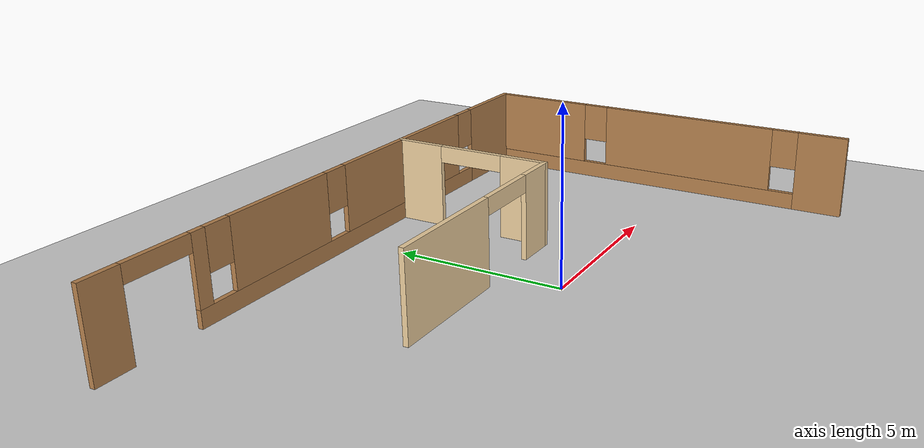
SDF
<sdf version="1.6">
 <world name="default">
  <model name="ground_plane">
   <static>1</static>
   <link name="link">
    <collision name="collision">
     <geometry><plane><normal>0 0 1</normal><size>100 100</size></plane></geometry>
     <surface><friction><ode><mu>100</mu><mu2>50</mu2></ode></friction></surface>
    </collision>
    <visual name="visual">
     <cast_shadows>0</cast_shadows>
     <geometry><plane><normal>0 0 1</normal><size>100 100</size></plane></geometry>
     <material>
      <script><uri>file://media/materials/scripts/gazebo.material</uri><name>Gazebo/Grey</name></script>
     </material>
    </visual>
   </link>
  </model>
  <model name="mybuilding">
   <link name="Wall_27">
    <pose>8.94289 0 0 0 -0 1.5708</pose>
    <visual name="Wall_27_Visual_0">
     <pose>-5.24969 0 1.25 0 -0 0</pose>
     <geometry><box><size>1.50062 0.15 2.5</size></box></geometry>
     <material>
      <script><uri>file://media/materials/scripts/gazebo.material</uri><name>Gazebo/Wood</name></script>
      <ambient>1 1 1 1</ambient>
      <shader type="pixel"/>
      <diffuse>1 1 1 1</diffuse>
      <specular>0.2 0.2 0.2 1</specular>
      <emissive>0 0 0 1</emissive>
     </material>
     <meta><layer>0</layer></meta>
    </visual>
    <visual name="Wall_27_Visual_1">
     <pose>0.750309 0 0.25 0 -0 0</pose>
     <geometry><box><size>10.4994 0.15 0.5</size></box></geometry>
     <material>
      <script><uri>file://media/materials/scripts/gazebo.material</uri><name>Gazebo/Wood</name></script>
      <ambient>1 1 1 1</ambient>
      <shader type="pixel"/>
      <diffuse>1 1 1 1</diffuse>
      <specular>0.2 0.2 0.2 1</specular>
      <emissive>0 0 0 1</emissive>
     </material>
     <meta><layer>0</layer></meta>
    </visual>
    <visual name="Wall_27_Visual_2">
     <pose>-0.87905 0 1.5 0 -0 0</pose>
     <geometry><box><size>5.64067 0.15 2</size></box></geometry>
     <material>
      <script><uri>file://media/materials/scripts/gazebo.material</uri><name>Gazebo/Wood</name></script>
      <ambient>1 1 1 1</ambient>
      <shader type="pixel"/>
      <diffuse>1 1 1 1</diffuse>
      <specular>0.2 0.2 0.2 1</specular>
      <emissive>0 0 0 1</emissive>
     </material>
     <meta><layer>0</layer></meta>
    </visual>
    <visual name="Wall_27_Visual_3">
     <pose>4.37064 0 1.5 0 -0 0</pose>
     <geometry><box><size>3.25872 0.15 2</size></box></geometry>
     <material>
      <script><uri>file://media/materials/scripts/gazebo.material</uri><name>Gazebo/Wood</name></script>
      <ambient>1 1 1 1</ambient>
      <shader type="pixel"/>
      <diffuse>1 1 1 1</diffuse>
      <specular>0.2 0.2 0.2 1</specular>
      <emissive>0 0 0 1</emissive>
     </material>
     <meta><layer>0</layer></meta>
    </visual>
    <visual name="Wall_27_Visual_4">
     <pose>-4.09938 0 1.9 0 -0 0</pose>
     <geometry><box><size>0.8 0.15 1.2</size></box></geometry>
     <material>
      <script><uri>file://media/materials/scripts/gazebo.material</uri><name>Gazebo/Wood</name></script>
      <ambient>1 1 1 1</ambient>
      <shader type="pixel"/>
      <diffuse>1 1 1 1</diffuse>
      <specular>0.2 0.2 0.2 1</specular>
      <emissive>0 0 0 1</emissive>
     </material>
     <meta><layer>0</layer></meta>
    </visual>
    <visual name="Wall_27_Visual_5">
     <pose>2.34128 0 1.9 0 -0 0</pose>
     <geometry><box><size>0.8 0.15 1.2</size></box></geometry>
     <material>
      <script><uri>file://media/materials/scripts/gazebo.material</uri><name>Gazebo/Wood</name></script>
      <ambient>1 1 1 1</ambient>
      <shader type="pixel"/>
      <diffuse>1 1 1 1</diffuse>
      <specular>0.2 0.2 0.2 1</specular>
      <emissive>0 0 0 1</emissive>
     </material>
     <meta><layer>0</layer></meta>
    </visual>
    <collision name="Wall_27_Collision_0">
     <pose>-5.24969 0 1.25 0 -0 0</pose>
     <geometry><box><size>1.50062 0.15 2.5</size></box></geometry>
     <surface>
      <friction>
       <ode><mu>1</mu><mu2>1</mu2><fdir1>0 0 0</fdir1><slip1>0</slip1><slip2>0</slip2></ode>
       <torsional>
        <coefficient>1</coefficient>
        <patch_radius>0</patch_radius>
        <surface_radius>0</surface_radius>
        <use_patch_radius>1</use_patch_radius>
        <ode><slip>0</slip></ode>
       </torsional>
      </friction>
      <bounce><restitution_coefficient>0</restitution_coefficient><threshold>1e+06</threshold></bounce>
      <contact>
       <collide_without_contact>0</collide_without_contact>
       <collide_without_contact_bitmask>1</collide_without_contact_bitmask>
       <collide_bitmask>1</collide_bitmask>
       <ode>
        <soft_cfm>0</soft_cfm>
        <soft_erp>0.2</soft_erp>
        <kp>1e+13</kp>
        <kd>1</kd>
        <max_vel>0.01</max_vel>
        <min_depth>0</min_depth>
       </ode>
       <bullet>
        <split_impulse>1</split_impulse>
        <split_impulse_penetration_threshold>-0.01</split_impulse_penetration_threshold>
        <soft_cfm>0</soft_cfm>
        <soft_erp>0.2</soft_erp>
        <kp>1e+13</kp>
        <kd>1</kd>
       </bullet>
      </contact>
     </surface>
    </collision>
    <collision name="Wall_27_Collision_1">
     <pose>0.750309 0 0.25 0 -0 0</pose>
     <geometry><box><size>10.4994 0.15 0.5</size></box></geometry>
     <surface>
      <friction>
       <ode><mu>1</mu><mu2>1</mu2><fdir1>0 0 0</fdir1><slip1>0</slip1><slip2>0</slip2></ode>
       <torsional>
        <coefficient>1</coefficient>
        <patch_radius>0</patch_radius>
        <surface_radius>0</surface_radius>
        <use_patch_radius>1</use_patch_radius>
        <ode><slip>0</slip></ode>
       </torsional>
      </friction>
      <bounce><restitution_coefficient>0</restitution_coefficient><threshold>1e+06</threshold></bounce>
      <contact>
       <collide_without_contact>0</collide_without_contact>
       <collide_without_contact_bitmask>1</collide_without_contact_bitmask>
       <collide_bitmask>1</collide_bitmask>
       <ode>
        <soft_cfm>0</soft_cfm>
        <soft_erp>0.2</soft_erp>
        <kp>1e+13</kp>
        <kd>1</kd>
        <max_vel>0.01</max_vel>
        <min_depth>0</min_depth>
       </ode>
       <bullet>
        <split_impulse>1</split_impulse>
        <split_impulse_penetration_threshold>-0.01</split_impulse_penetration_threshold>
        <soft_cfm>0</soft_cfm>
        <soft_erp>0.2</soft_erp>
        <kp>1e+13</kp>
        <kd>1</kd>
       </bullet>
      </contact>
     </surface>
    </collision>
    <collision name="Wall_27_Collision_2">
     <pose>-0.87905 0 1.5 0 -0 0</pose>
     <geometry><box><size>5.64067 0.15 2</size></box></geometry>
     <surface>
      <friction>
       <ode><mu>1</mu><mu2>1</mu2><fdir1>0 0 0</fdir1><slip1>0</slip1><slip2>0</slip2></ode>
       <torsional>
        <coefficient>1</coefficient>
        <patch_radius>0</patch_radius>
        <surface_radius>0</surface_radius>
        <use_patch_radius>1</use_patch_radius>
        <ode><slip>0</slip></ode>
       </torsional>
      </friction>
      <bounce><restitution_coefficient>0</restitution_coefficient><threshold>1e+06</threshold></bounce>
      <contact>
       <collide_without_contact>0</collide_without_contact>
       <collide_without_contact_bitmask>1</collide_without_contact_bitmask>
       <collide_bitmask>1</collide_bitmask>
       <ode>
        <soft_cfm>0</soft_cfm>
        <soft_erp>0.2</soft_erp>
        <kp>1e+13</kp>
        <kd>1</kd>
        <max_vel>0.01</max_vel>
        <min_depth>0</min_depth>
       </ode>
       <bullet>
        <split_impulse>1</split_impulse>
        <split_impulse_penetration_threshold>-0.01</split_impulse_penetration_threshold>
        <soft_cfm>0</soft_cfm>
        <soft_erp>0.2</soft_erp>
        <kp>1e+13</kp>
        <kd>1</kd>
       </bullet>
      </contact>
     </surface>
    </collision>
    <collision name="Wall_27_Collision_3">
     <pose>4.37064 0 1.5 0 -0 0</pose>
     <geometry><box><size>3.25872 0.15 2</size></box></geometry>
     <surface>
      <friction>
       <ode><mu>1</mu><mu2>1</mu2><fdir1>0 0 0</fdir1><slip1>0</slip1><slip2>0</slip2></ode>
       <torsional>
        <coefficient>1</coefficient>
        <patch_radius>0</patch_radius>
        <surface_radius>0</surface_radius>
        <use_patch_radius>1</use_patch_radius>
        <ode><slip>0</slip></ode>
       </torsional>
      </friction>
      <bounce><restitution_coefficient>0</restitution_coefficient><threshold>1e+06</threshold></bounce>
      <contact>
       <collide_without_contact>0</collide_without_contact>
       <collide_without_contact_bitmask>1</collide_without_contact_bitmask>
       <collide_bitmask>1</collide_bitmask>
       <ode>
        <soft_cfm>0</soft_cfm>
        <soft_erp>0.2</soft_erp>
        <kp>1e+13</kp>
        <kd>1</kd>
        <max_vel>0.01</max_vel>
        <min_depth>0</min_depth>
       </ode>
       <bullet>
        <split_impulse>1</split_impulse>
        <split_impulse_penetration_threshold>-0.01</split_impulse_penetration_threshold>
        <soft_cfm>0</soft_cfm>
        <soft_erp>0.2</soft_erp>
        <kp>1e+13</kp>
        <kd>1</kd>
       </bullet>
      </contact>
     </surface>
    </collision>
    <collision name="Wall_27_Collision_4">
     <pose>-4.09938 0 1.9 0 -0 0</pose>
     <geometry><box><size>0.8 0.15 1.2</size></box></geometry>
     <surface>
      <friction>
       <ode><mu>1</mu><mu2>1</mu2><fdir1>0 0 0</fdir1><slip1>0</slip1><slip2>0</slip2></ode>
       <torsional>
        <coefficient>1</coefficient>
        <patch_radius>0</patch_radius>
        <surface_radius>0</surface_radius>
        <use_patch_radius>1</use_patch_radius>
        <ode><slip>0</slip></ode>
       </torsional>
      </friction>
      <bounce><restitution_coefficient>0</restitution_coefficient><threshold>1e+06</threshold></bounce>
      <contact>
       <collide_without_contact>0</collide_without_contact>
       <collide_without_contact_bitmask>1</collide_without_contact_bitmask>
       <collide_bitmask>1</collide_bitmask>
       <ode>
        <soft_cfm>0</soft_cfm>
        <soft_erp>0.2</soft_erp>
        <kp>1e+13</kp>
        <kd>1</kd>
        <max_vel>0.01</max_vel>
        <min_depth>0</min_depth>
       </ode>
       <bullet>
        <split_impulse>1</split_impulse>
        <split_impulse_penetration_threshold>-0.01</split_impulse_penetration_threshold>
        <soft_cfm>0</soft_cfm>
        <soft_erp>0.2</soft_erp>
        <kp>1e+13</kp>
        <kd>1</kd>
       </bullet>
      </contact>
     </surface>
    </collision>
    <collision name="Wall_27_Collision_5">
     <pose>2.34128 0 1.9 0 -0 0</pose>
     <geometry><box><size>0.8 0.15 1.2</size></box></geometry>
     <surface>
      <friction>
       <ode><mu>1</mu><mu2>1</mu2><fdir1>0 0 0</fdir1><slip1>0</slip1><slip2>0</slip2></ode>
       <torsional>
        <coefficient>1</coefficient>
        <patch_radius>0</patch_radius>
        <surface_radius>0</surface_radius>
        <use_patch_radius>1</use_patch_radius>
        <ode><slip>0</slip></ode>
       </torsional>
      </friction>
      <bounce><restitution_coefficient>0</restitution_coefficient><threshold>1e+06</threshold></bounce>
      <contact>
       <collide_without_contact>0</collide_without_contact>
       <collide_without_contact_bitmask>1</collide_without_contact_bitmask>
       <collide_bitmask>1</collide_bitmask>
       <ode>
        <soft_cfm>0</soft_cfm>
        <soft_erp>0.2</soft_erp>
        <kp>1e+13</kp>
        <kd>1</kd>
        <max_vel>0.01</max_vel>
        <min_depth>0</min_depth>
       </ode>
       <bullet>
        <split_impulse>1</split_impulse>
        <split_impulse_penetration_threshold>-0.01</split_impulse_penetration_threshold>
        <soft_cfm>0</soft_cfm>
        <soft_erp>0.2</soft_erp>
        <kp>1e+13</kp>
        <kd>1</kd>
       </bullet>
      </contact>
     </surface>
    </collision>
   </link>
   <link name="Wall_28">
    <pose>0.01789 5.925 0 0 -0 3.14159</pose>
    <visual name="Wall_28_Visual_0">
     <pose>-7.74223 0 1.25 0 -0 0</pose>
     <geometry><box><size>2.51553 0.15 2.5</size></box></geometry>
     <material>
      <script><uri>file://media/materials/scripts/gazebo.material</uri><name>Gazebo/Wood</name></script>
      <ambient>1 1 1 1</ambient>
      <shader type="pixel"/>
      <diffuse>1 1 1 1</diffuse>
      <specular>0.2 0.2 0.2 1</specular>
      <emissive>0 0 0 1</emissive>
     </material>
     <meta><layer>0</layer></meta>
    </visual>
    <visual name="Wall_28_Visual_1">
     <pose>8.4451 0 1.25 0 -0 0</pose>
     <geometry><box><size>1.1098 0.15 2.5</size></box></geometry>
     <material>
      <script><uri>file://media/materials/scripts/gazebo.material</uri><name>Gazebo/Wood</name></script>
      <ambient>1 1 1 1</ambient>
      <shader type="pixel"/>
      <diffuse>1 1 1 1</diffuse>
      <specular>0.2 0.2 0.2 1</specular>
      <emissive>0 0 0 1</emissive>
     </material>
     <meta><layer>0</layer></meta>
    </visual>
    <visual name="Wall_28_Visual_2">
     <pose>-0.297132 0 0.25 0 -0 0</pose>
     <geometry><box><size>12.3747 0.15 0.5</size></box></geometry>
     <material>
      <script><uri>file://media/materials/scripts/gazebo.material</uri><name>Gazebo/Wood</name></script>
      <ambient>1 1 1 1</ambient>
      <shader type="pixel"/>
      <diffuse>1 1 1 1</diffuse>
      <specular>0.2 0.2 0.2 1</specular>
      <emissive>0 0 0 1</emissive>
     </material>
     <meta><layer>0</layer></meta>
    </visual>
    <visual name="Wall_28_Visual_3">
     <pose>-2.73968 0 1.5 0 -0 0</pose>
     <geometry><box><size>5.88958 0.15 2</size></box></geometry>
     <material>
      <script><uri>file://media/materials/scripts/gazebo.material</uri><name>Gazebo/Wood</name></script>
      <ambient>1 1 1 1</ambient>
      <shader type="pixel"/>
      <diffuse>1 1 1 1</diffuse>
      <specular>0.2 0.2 0.2 1</specular>
      <emissive>0 0 0 1</emissive>
     </material>
     <meta><layer>0</layer></meta>
    </visual>
    <visual name="Wall_28_Visual_4">
     <pose>2.82979 0 1.5 0 -0 0</pose>
     <geometry><box><size>3.64935 0.15 2</size></box></geometry>
     <material>
      <script><uri>file://media/materials/scripts/gazebo.material</uri><name>Gazebo/Wood</name></script>
      <ambient>1 1 1 1</ambient>
      <shader type="pixel"/>
      <diffuse>1 1 1 1</diffuse>
      <specular>0.2 0.2 0.2 1</specular>
      <emissive>0 0 0 1</emissive>
     </material>
     <meta><layer>0</layer></meta>
    </visual>
    <visual name="Wall_28_Visual_5">
     <pose>5.67233 0 1.5 0 -0 0</pose>
     <geometry><box><size>0.435745 0.15 2</size></box></geometry>
     <material>
      <script><uri>file://media/materials/scripts/gazebo.material</uri><name>Gazebo/Wood</name></script>
      <ambient>1 1 1 1</ambient>
      <shader type="pixel"/>
      <diffuse>1 1 1 1</diffuse>
      <specular>0.2 0.2 0.2 1</specular>
      <emissive>0 0 0 1</emissive>
     </material>
     <meta><layer>0</layer></meta>
    </visual>
    <visual name="Wall_28_Visual_6">
     <pose>-6.08447 0 1.9 0 -0 0</pose>
     <geometry><box><size>0.8 0.15 1.2</size></box></geometry>
     <material>
      <script><uri>file://media/materials/scripts/gazebo.material</uri><name>Gazebo/Wood</name></script>
      <ambient>1 1 1 1</ambient>
      <shader type="pixel"/>
      <diffuse>1 1 1 1</diffuse>
      <specular>0.2 0.2 0.2 1</specular>
      <emissive>0 0 0 1</emissive>
     </material>
     <meta><layer>0</layer></meta>
    </visual>
    <visual name="Wall_28_Visual_7">
     <pose>0.605112 0 1.9 0 -0 0</pose>
     <geometry><box><size>0.8 0.15 1.2</size></box></geometry>
     <material>
      <script><uri>file://media/materials/scripts/gazebo.material</uri><name>Gazebo/Wood</name></script>
      <ambient>1 1 1 1</ambient>
      <shader type="pixel"/>
      <diffuse>1 1 1 1</diffuse>
      <specular>0.2 0.2 0.2 1</specular>
      <emissive>0 0 0 1</emissive>
     </material>
     <meta><layer>0</layer></meta>
    </visual>
    <visual name="Wall_28_Visual_8">
     <pose>5.05446 0 1.9 0 -0 0</pose>
     <geometry><box><size>0.8 0.15 1.2</size></box></geometry>
     <material>
      <script><uri>file://media/materials/scripts/gazebo.material</uri><name>Gazebo/Wood</name></script>
      <ambient>1 1 1 1</ambient>
      <shader type="pixel"/>
      <diffuse>1 1 1 1</diffuse>
      <specular>0.2 0.2 0.2 1</specular>
      <emissive>0 0 0 1</emissive>
     </material>
     <meta><layer>0</layer></meta>
    </visual>
    <visual name="Wall_28_Visual_9">
     <pose>6.8902 0 2.25 0 -0 0</pose>
     <geometry><box><size>2 0.15 0.5</size></box></geometry>
     <material>
      <script><uri>file://media/materials/scripts/gazebo.material</uri><name>Gazebo/Wood</name></script>
      <ambient>1 1 1 1</ambient>
      <shader type="pixel"/>
      <diffuse>1 1 1 1</diffuse>
      <specular>0.2 0.2 0.2 1</specular>
      <emissive>0 0 0 1</emissive>
     </material>
     <meta><layer>0</layer></meta>
    </visual>
    <collision name="Wall_28_Collision_0">
     <pose>-7.74223 0 1.25 0 -0 0</pose>
     <geometry><box><size>2.51553 0.15 2.5</size></box></geometry>
     <surface>
      <friction>
       <ode><mu>1</mu><mu2>1</mu2><fdir1>0 0 0</fdir1><slip1>0</slip1><slip2>0</slip2></ode>
       <torsional>
        <coefficient>1</coefficient>
        <patch_radius>0</patch_radius>
        <surface_radius>0</surface_radius>
        <use_patch_radius>1</use_patch_radius>
        <ode><slip>0</slip></ode>
       </torsional>
      </friction>
      <bounce><restitution_coefficient>0</restitution_coefficient><threshold>1e+06</threshold></bounce>
      <contact>
       <collide_without_contact>0</collide_without_contact>
       <collide_without_contact_bitmask>1</collide_without_contact_bitmask>
       <collide_bitmask>1</collide_bitmask>
       <ode>
        <soft_cfm>0</soft_cfm>
        <soft_erp>0.2</soft_erp>
        <kp>1e+13</kp>
        <kd>1</kd>
        <max_vel>0.01</max_vel>
        <min_depth>0</min_depth>
       </ode>
       <bullet>
        <split_impulse>1</split_impulse>
        <split_impulse_penetration_threshold>-0.01</split_impulse_penetration_threshold>
        <soft_cfm>0</soft_cfm>
        <soft_erp>0.2</soft_erp>
        <kp>1e+13</kp>
        <kd>1</kd>
       </bullet>
      </contact>
     </surface>
    </collision>
    <collision name="Wall_28_Collision_1">
     <pose>8.4451 0 1.25 0 -0 0</pose>
     <geometry><box><size>1.1098 0.15 2.5</size></box></geometry>
     <surface>
      <friction>
       <ode><mu>1</mu><mu2>1</mu2><fdir1>0 0 0</fdir1><slip1>0</slip1><slip2>0</slip2></ode>
       <torsional>
        <coefficient>1</coefficient>
        <patch_radius>0</patch_radius>
        <surface_radius>0</surface_radius>
        <use_patch_radius>1</use_patch_radius>
        <ode><slip>0</slip></ode>
       </torsional>
      </friction>
      <bounce><restitution_coefficient>0</restitution_coefficient><threshold>1e+06</threshold></bounce>
      <contact>
       <collide_without_contact>0</collide_without_contact>
       <collide_without_contact_bitmask>1</collide_without_contact_bitmask>
       <collide_bitmask>1</collide_bitmask>
       <ode>
        <soft_cfm>0</soft_cfm>
        <soft_erp>0.2</soft_erp>
        <kp>1e+13</kp>
        <kd>1</kd>
        <max_vel>0.01</max_vel>
        <min_depth>0</min_depth>
       </ode>
       <bullet>
        <split_impulse>1</split_impulse>
        <split_impulse_penetration_threshold>-0.01</split_impulse_penetration_threshold>
        <soft_cfm>0</soft_cfm>
        <soft_erp>0.2</soft_erp>
        <kp>1e+13</kp>
        <kd>1</kd>
       </bullet>
      </contact>
     </surface>
    </collision>
    <collision name="Wall_28_Collision_2">
     <pose>-0.297132 0 0.25 0 -0 0</pose>
     <geometry><box><size>12.3747 0.15 0.5</size></box></geometry>
     <surface>
      <friction>
       <ode><mu>1</mu><mu2>1</mu2><fdir1>0 0 0</fdir1><slip1>0</slip1><slip2>0</slip2></ode>
       <torsional>
        <coefficient>1</coefficient>
        <patch_radius>0</patch_radius>
        <surface_radius>0</surface_radius>
        <use_patch_radius>1</use_patch_radius>
        <ode><slip>0</slip></ode>
       </torsional>
      </friction>
      <bounce><restitution_coefficient>0</restitution_coefficient><threshold>1e+06</threshold></bounce>
      <contact>
       <collide_without_contact>0</collide_without_contact>
       <collide_without_contact_bitmask>1</collide_without_contact_bitmask>
       <collide_bitmask>1</collide_bitmask>
       <ode>
        <soft_cfm>0</soft_cfm>
        <soft_erp>0.2</soft_erp>
        <kp>1e+13</kp>
        <kd>1</kd>
        <max_vel>0.01</max_vel>
        <min_depth>0</min_depth>
       </ode>
       <bullet>
        <split_impulse>1</split_impulse>
        <split_impulse_penetration_threshold>-0.01</split_impulse_penetration_threshold>
        <soft_cfm>0</soft_cfm>
        <soft_erp>0.2</soft_erp>
        <kp>1e+13</kp>
        <kd>1</kd>
       </bullet>
      </contact>
     </surface>
    </collision>
    <collision name="Wall_28_Collision_4">
     <pose>2.82979 0 1.5 0 -0 0</pose>
     <geometry><box><size>3.64935 0.15 2</size></box></geometry>
     <surface>
      <friction>
       <ode><mu>1</mu><mu2>1</mu2><fdir1>0 0 0</fdir1><slip1>0</slip1><slip2>0</slip2></ode>
       <torsional>
        <coefficient>1</coefficient>
        <patch_radius>0</patch_radius>
        <surface_radius>0</surface_radius>
        <use_patch_radius>1</use_patch_radius>
        <ode><slip>0</slip></ode>
       </torsional>
      </friction>
      <bounce><restitution_coefficient>0</restitution_coefficient><threshold>1e+06</threshold></bounce>
      <contact>
       <collide_without_contact>0</collide_without_contact>
       <collide_without_contact_bitmask>1</collide_without_contact_bitmask>
       <collide_bitmask>1</collide_bitmask>
       <ode>
        <soft_cfm>0</soft_cfm>
        <soft_erp>0.2</soft_erp>
        <kp>1e+13</kp>
        <kd>1</kd>
        <max_vel>0.01</max_vel>
        <min_depth>0</min_depth>
       </ode>
       <bullet>
        <split_impulse>1</split_impulse>
        <split_impulse_penetration_threshold>-0.01</split_impulse_penetration_threshold>
        <soft_cfm>0</soft_cfm>
        <soft_erp>0.2</soft_erp>
        <kp>1e+13</kp>
        <kd>1</kd>
       </bullet>
      </contact>
     </surface>
    </collision>
    <collision name="Wall_28_Collision_3">
     <pose>-2.73968 0 1.5 0 -0 0</pose>
     <geometry><box><size>5.88958 0.15 2</size></box></geometry>
     <surface>
      <friction>
       <ode><mu>1</mu><mu2>1</mu2><fdir1>0 0 0</fdir1><slip1>0</slip1><slip2>0</slip2></ode>
       <torsional>
        <coefficient>1</coefficient>
        <patch_radius>0</patch_radius>
        <surface_radius>0</surface_radius>
        <use_patch_radius>1</use_patch_radius>
        <ode><slip>0</slip></ode>
       </torsional>
      </friction>
      <bounce><restitution_coefficient>0</restitution_coefficient><threshold>1e+06</threshold></bounce>
      <contact>
       <collide_without_contact>0</collide_without_contact>
       <collide_without_contact_bitmask>1</collide_without_contact_bitmask>
       <collide_bitmask>1</collide_bitmask>
       <ode>
        <soft_cfm>0</soft_cfm>
        <soft_erp>0.2</soft_erp>
        <kp>1e+13</kp>
        <kd>1</kd>
        <max_vel>0.01</max_vel>
        <min_depth>0</min_depth>
       </ode>
       <bullet>
        <split_impulse>1</split_impulse>
        <split_impulse_penetration_threshold>-0.01</split_impulse_penetration_threshold>
        <soft_cfm>0</soft_cfm>
        <soft_erp>0.2</soft_erp>
        <kp>1e+13</kp>
        <kd>1</kd>
       </bullet>
      </contact>
     </surface>
    </collision>
    <collision name="Wall_28_Collision_5">
     <pose>5.67233 0 1.5 0 -0 0</pose>
     <geometry><box><size>0.435745 0.15 2</size></box></geometry>
     <surface>
      <friction>
       <ode><mu>1</mu><mu2>1</mu2><fdir1>0 0 0</fdir1><slip1>0</slip1><slip2>0</slip2></ode>
       <torsional>
        <coefficient>1</coefficient>
        <patch_radius>0</patch_radius>
        <surface_radius>0</surface_radius>
        <use_patch_radius>1</use_patch_radius>
        <ode><slip>0</slip></ode>
       </torsional>
      </friction>
      <bounce><restitution_coefficient>0</restitution_coefficient><threshold>1e+06</threshold></bounce>
      <contact>
       <collide_without_contact>0</collide_without_contact>
       <collide_without_contact_bitmask>1</collide_without_contact_bitmask>
       <collide_bitmask>1</collide_bitmask>
       <ode>
        <soft_cfm>0</soft_cfm>
        <soft_erp>0.2</soft_erp>
        <kp>1e+13</kp>
        <kd>1</kd>
        <max_vel>0.01</max_vel>
        <min_depth>0</min_depth>
       </ode>
       <bullet>
        <split_impulse>1</split_impulse>
        <split_impulse_penetration_threshold>-0.01</split_impulse_penetration_threshold>
        <soft_cfm>0</soft_cfm>
        <soft_erp>0.2</soft_erp>
        <kp>1e+13</kp>
        <kd>1</kd>
       </bullet>
      </contact>
     </surface>
    </collision>
    <collision name="Wall_28_Collision_6">
     <pose>-6.08447 0 1.9 0 -0 0</pose>
     <geometry><box><size>0.8 0.15 1.2</size></box></geometry>
     <surface>
      <friction>
       <ode><mu>1</mu><mu2>1</mu2><fdir1>0 0 0</fdir1><slip1>0</slip1><slip2>0</slip2></ode>
       <torsional>
        <coefficient>1</coefficient>
        <patch_radius>0</patch_radius>
        <surface_radius>0</surface_radius>
        <use_patch_radius>1</use_patch_radius>
        <ode><slip>0</slip></ode>
       </torsional>
      </friction>
      <bounce><restitution_coefficient>0</restitution_coefficient><threshold>1e+06</threshold></bounce>
      <contact>
       <collide_without_contact>0</collide_without_contact>
       <collide_without_contact_bitmask>1</collide_without_contact_bitmask>
       <collide_bitmask>1</collide_bitmask>
       <ode>
        <soft_cfm>0</soft_cfm>
        <soft_erp>0.2</soft_erp>
        <kp>1e+13</kp>
        <kd>1</kd>
        <max_vel>0.01</max_vel>
        <min_depth>0</min_depth>
       </ode>
       <bullet>
        <split_impulse>1</split_impulse>
        <split_impulse_penetration_threshold>-0.01</split_impulse_penetration_threshold>
        <soft_cfm>0</soft_cfm>
        <soft_erp>0.2</soft_erp>
        <kp>1e+13</kp>
        <kd>1</kd>
       </bullet>
      </contact>
     </surface>
    </collision>
    <collision name="Wall_28_Collision_7">
     <pose>0.605112 0 1.9 0 -0 0</pose>
     <geometry><box><size>0.8 0.15 1.2</size></box></geometry>
     <surface>
      <friction>
       <ode><mu>1</mu><mu2>1</mu2><fdir1>0 0 0</fdir1><slip1>0</slip1><slip2>0</slip2></ode>
       <torsional>
        <coefficient>1</coefficient>
        <patch_radius>0</patch_radius>
        <surface_radius>0</surface_radius>
        <use_patch_radius>1</use_patch_radius>
        <ode><slip>0</slip></ode>
       </torsional>
      </friction>
      <bounce><restitution_coefficient>0</restitution_coefficient><threshold>1e+06</threshold></bounce>
      <contact>
       <collide_without_contact>0</collide_without_contact>
       <collide_without_contact_bitmask>1</collide_without_contact_bitmask>
       <collide_bitmask>1</collide_bitmask>
       <ode>
        <soft_cfm>0</soft_cfm>
        <soft_erp>0.2</soft_erp>
        <kp>1e+13</kp>
        <kd>1</kd>
        <max_vel>0.01</max_vel>
        <min_depth>0</min_depth>
       </ode>
       <bullet>
        <split_impulse>1</split_impulse>
        <split_impulse_penetration_threshold>-0.01</split_impulse_penetration_threshold>
        <soft_cfm>0</soft_cfm>
        <soft_erp>0.2</soft_erp>
        <kp>1e+13</kp>
        <kd>1</kd>
       </bullet>
      </contact>
     </surface>
    </collision>
    <collision name="Wall_28_Collision_8">
     <pose>5.05446 0 1.9 0 -0 0</pose>
     <geometry><box><size>0.8 0.15 1.2</size></box></geometry>
     <surface>
      <friction>
       <ode><mu>1</mu><mu2>1</mu2><fdir1>0 0 0</fdir1><slip1>0</slip1><slip2>0</slip2></ode>
       <torsional>
        <coefficient>1</coefficient>
        <patch_radius>0</patch_radius>
        <surface_radius>0</surface_radius>
        <use_patch_radius>1</use_patch_radius>
        <ode><slip>0</slip></ode>
       </torsional>
      </friction>
      <bounce><restitution_coefficient>0</restitution_coefficient><threshold>1e+06</threshold></bounce>
      <contact>
       <collide_without_contact>0</collide_without_contact>
       <collide_without_contact_bitmask>1</collide_without_contact_bitmask>
       <collide_bitmask>1</collide_bitmask>
       <ode>
        <soft_cfm>0</soft_cfm>
        <soft_erp>0.2</soft_erp>
        <kp>1e+13</kp>
        <kd>1</kd>
        <max_vel>0.01</max_vel>
        <min_depth>0</min_depth>
       </ode>
       <bullet>
        <split_impulse>1</split_impulse>
        <split_impulse_penetration_threshold>-0.01</split_impulse_penetration_threshold>
        <soft_cfm>0</soft_cfm>
        <soft_erp>0.2</soft_erp>
        <kp>1e+13</kp>
        <kd>1</kd>
       </bullet>
      </contact>
     </surface>
    </collision>
    <collision name="Wall_28_Collision_9">
     <pose>6.8902 0 2.25 0 -0 0</pose>
     <geometry><box><size>2 0.15 0.5</size></box></geometry>
     <surface>
      <friction>
       <ode><mu>1</mu><mu2>1</mu2><fdir1>0 0 0</fdir1><slip1>0</slip1><slip2>0</slip2></ode>
       <torsional>
        <coefficient>1</coefficient>
        <patch_radius>0</patch_radius>
        <surface_radius>0</surface_radius>
        <use_patch_radius>1</use_patch_radius>
        <ode><slip>0</slip></ode>
       </torsional>
      </friction>
      <bounce><restitution_coefficient>0</restitution_coefficient><threshold>1e+06</threshold></bounce>
      <contact>
       <collide_without_contact>0</collide_without_contact>
       <collide_without_contact_bitmask>1</collide_without_contact_bitmask>
       <collide_bitmask>1</collide_bitmask>
       <ode>
        <soft_cfm>0</soft_cfm>
        <soft_erp>0.2</soft_erp>
        <kp>1e+13</kp>
        <kd>1</kd>
        <max_vel>0.01</max_vel>
        <min_depth>0</min_depth>
       </ode>
       <bullet>
        <split_impulse>1</split_impulse>
        <split_impulse_penetration_threshold>-0.01</split_impulse_penetration_threshold>
        <soft_cfm>0</soft_cfm>
        <soft_erp>0.2</soft_erp>
        <kp>1e+13</kp>
        <kd>1</kd>
       </bullet>
      </contact>
     </surface>
    </collision>
   </link>
   <link name="Wall_36">
    <pose>-0.802597 1.06943 0 0 -0 0</pose>
    <visual name="Wall_36_Visual_0">
     <pose>-1.64448 0 1.25 0 -0 0</pose>
     <geometry><box><size>3.71103 0.15 2.5</size></box></geometry>
     <material>
      <script><uri>file://media/materials/scripts/gazebo.material</uri><name>Gazebo/Grey</name></script>
      <ambient>0.921569 0.807843 0.615686 1</ambient>
      <shader type="pixel"/>
      <diffuse>0.7 0.7 0.7 1</diffuse>
      <specular>0.01 0.01 0.01 1</specular>
      <emissive>0 0 0 1</emissive>
     </material>
     <meta><layer>0</layer></meta>
    </visual>
    <visual name="Wall_36_Visual_1">
     <pose>2.85552 0 1.25 0 -0 0</pose>
     <geometry><box><size>1.28897 0.15 2.5</size></box></geometry>
     <material>
      <script><uri>file://media/materials/scripts/gazebo.material</uri><name>Gazebo/Grey</name></script>
      <ambient>0.921569 0.807843 0.615686 1</ambient>
      <shader type="pixel"/>
      <diffuse>0.7 0.7 0.7 1</diffuse>
      <specular>0.01 0.01 0.01 1</specular>
      <emissive>0 0 0 1</emissive>
     </material>
     <meta><layer>0</layer></meta>
    </visual>
    <visual name="Wall_36_Visual_2">
     <pose>1.21103 0 2.25 0 -0 0</pose>
     <geometry><box><size>2 0.15 0.5</size></box></geometry>
     <material>
      <script><uri>file://media/materials/scripts/gazebo.material</uri><name>Gazebo/Grey</name></script>
      <ambient>0.921569 0.807843 0.615686 1</ambient>
      <shader type="pixel"/>
      <diffuse>0.7 0.7 0.7 1</diffuse>
      <specular>0.01 0.01 0.01 1</specular>
      <emissive>0 0 0 1</emissive>
     </material>
     <meta><layer>0</layer></meta>
    </visual>
    <collision name="Wall_36_Collision_0">
     <pose>-1.64448 0 1.25 0 -0 0</pose>
     <geometry><box><size>3.71103 0.15 2.5</size></box></geometry>
     <surface>
      <friction>
       <ode><mu>1</mu><mu2>1</mu2><fdir1>0 0 0</fdir1><slip1>0</slip1><slip2>0</slip2></ode>
       <torsional>
        <coefficient>1</coefficient>
        <patch_radius>0</patch_radius>
        <surface_radius>0</surface_radius>
        <use_patch_radius>1</use_patch_radius>
        <ode><slip>0</slip></ode>
       </torsional>
      </friction>
      <bounce><restitution_coefficient>0</restitution_coefficient><threshold>1e+06</threshold></bounce>
      <contact>
       <collide_without_contact>0</collide_without_contact>
       <collide_without_contact_bitmask>1</collide_without_contact_bitmask>
       <collide_bitmask>1</collide_bitmask>
       <ode>
        <soft_cfm>0</soft_cfm>
        <soft_erp>0.2</soft_erp>
        <kp>1e+13</kp>
        <kd>1</kd>
        <max_vel>0.01</max_vel>
        <min_depth>0</min_depth>
       </ode>
       <bullet>
        <split_impulse>1</split_impulse>
        <split_impulse_penetration_threshold>-0.01</split_impulse_penetration_threshold>
        <soft_cfm>0</soft_cfm>
        <soft_erp>0.2</soft_erp>
        <kp>1e+13</kp>
        <kd>1</kd>
       </bullet>
      </contact>
     </surface>
    </collision>
    <collision name="Wall_36_Collision_1">
     <pose>2.85552 0 1.25 0 -0 0</pose>
     <geometry><box><size>1.28897 0.15 2.5</size></box></geometry>
     <surface>
      <friction>
       <ode><mu>1</mu><mu2>1</mu2><fdir1>0 0 0</fdir1><slip1>0</slip1><slip2>0</slip2></ode>
       <torsional>
        <coefficient>1</coefficient>
        <patch_radius>0</patch_radius>
        <surface_radius>0</surface_radius>
        <use_patch_radius>1</use_patch_radius>
        <ode><slip>0</slip></ode>
       </torsional>
      </friction>
      <bounce><restitution_coefficient>0</restitution_coefficient><threshold>1e+06</threshold></bounce>
      <contact>
       <collide_without_contact>0</collide_without_contact>
       <collide_without_contact_bitmask>1</collide_without_contact_bitmask>
       <collide_bitmask>1</collide_bitmask>
       <ode>
        <soft_cfm>0</soft_cfm>
        <soft_erp>0.2</soft_erp>
        <kp>1e+13</kp>
        <kd>1</kd>
        <max_vel>0.01</max_vel>
        <min_depth>0</min_depth>
       </ode>
       <bullet>
        <split_impulse>1</split_impulse>
        <split_impulse_penetration_threshold>-0.01</split_impulse_penetration_threshold>
        <soft_cfm>0</soft_cfm>
        <soft_erp>0.2</soft_erp>
        <kp>1e+13</kp>
        <kd>1</kd>
       </bullet>
      </contact>
     </surface>
    </collision>
    <collision name="Wall_36_Collision_2">
     <pose>1.21103 0 2.25 0 -0 0</pose>
     <geometry><box><size>2 0.15 0.5</size></box></geometry>
     <surface>
      <friction>
       <ode><mu>1</mu><mu2>1</mu2><fdir1>0 0 0</fdir1><slip1>0</slip1><slip2>0</slip2></ode>
       <torsional>
        <coefficient>1</coefficient>
        <patch_radius>0</patch_radius>
        <surface_radius>0</surface_radius>
        <use_patch_radius>1</use_patch_radius>
        <ode><slip>0</slip></ode>
       </torsional>
      </friction>
      <bounce><restitution_coefficient>0</restitution_coefficient><threshold>1e+06</threshold></bounce>
      <contact>
       <collide_without_contact>0</collide_without_contact>
       <collide_without_contact_bitmask>1</collide_without_contact_bitmask>
       <collide_bitmask>1</collide_bitmask>
       <ode>
        <soft_cfm>0</soft_cfm>
        <soft_erp>0.2</soft_erp>
        <kp>1e+13</kp>
        <kd>1</kd>
        <max_vel>0.01</max_vel>
        <min_depth>0</min_depth>
       </ode>
       <bullet>
        <split_impulse>1</split_impulse>
        <split_impulse_penetration_threshold>-0.01</split_impulse_penetration_threshold>
        <soft_cfm>0</soft_cfm>
        <soft_erp>0.2</soft_erp>
        <kp>1e+13</kp>
        <kd>1</kd>
       </bullet>
      </contact>
     </surface>
    </collision>
   </link>
   <link name="Wall_37">
    <pose>2.6224 3.49443 0 0 -0 1.5708</pose>
    <visual name="Wall_37_Visual_0">
     <pose>-1.76652 0 1.25 0 -0 0</pose>
     <geometry><box><size>1.46697 0.15 2.5</size></box></geometry>
     <material>
      <script><uri>file://media/materials/scripts/gazebo.material</uri><name>Gazebo/Grey</name></script>
      <ambient>0.921569 0.807843 0.615686 1</ambient>
      <shader type="pixel"/>
      <diffuse>0.7 0.7 0.7 1</diffuse>
      <specular>0.01 0.01 0.01 1</specular>
      <emissive>0 0 0 1</emissive>
     </material>
     <meta><layer>0</layer></meta>
    </visual>
    <visual name="Wall_37_Visual_1">
     <pose>1.73348 0 1.25 0 -0 0</pose>
     <geometry><box><size>1.53303 0.15 2.5</size></box></geometry>
     <material>
      <script><uri>file://media/materials/scripts/gazebo.material</uri><name>Gazebo/Grey</name></script>
      <ambient>0.921569 0.807843 0.615686 1</ambient>
      <shader type="pixel"/>
      <diffuse>0.7 0.7 0.7 1</diffuse>
      <specular>0.01 0.01 0.01 1</specular>
      <emissive>0 0 0 1</emissive>
     </material>
     <meta><layer>0</layer></meta>
    </visual>
    <visual name="Wall_37_Visual_2">
     <pose>-0.033031 0 2.25 0 -0 0</pose>
     <geometry><box><size>2 0.15 0.5</size></box></geometry>
     <material>
      <script><uri>file://media/materials/scripts/gazebo.material</uri><name>Gazebo/Grey</name></script>
      <ambient>0.921569 0.807843 0.615686 1</ambient>
      <shader type="pixel"/>
      <diffuse>0.7 0.7 0.7 1</diffuse>
      <specular>0.01 0.01 0.01 1</specular>
      <emissive>0 0 0 1</emissive>
     </material>
     <meta><layer>0</layer></meta>
    </visual>
    <collision name="Wall_37_Collision_0">
     <pose>-1.76652 0 1.25 0 -0 0</pose>
     <geometry><box><size>1.46697 0.15 2.5</size></box></geometry>
     <surface>
      <friction>
       <ode><mu>1</mu><mu2>1</mu2><fdir1>0 0 0</fdir1><slip1>0</slip1><slip2>0</slip2></ode>
       <torsional>
        <coefficient>1</coefficient>
        <patch_radius>0</patch_radius>
        <surface_radius>0</surface_radius>
        <use_patch_radius>1</use_patch_radius>
        <ode><slip>0</slip></ode>
       </torsional>
      </friction>
      <bounce><restitution_coefficient>0</restitution_coefficient><threshold>1e+06</threshold></bounce>
      <contact>
       <collide_without_contact>0</collide_without_contact>
       <collide_without_contact_bitmask>1</collide_without_contact_bitmask>
       <collide_bitmask>1</collide_bitmask>
       <ode>
        <soft_cfm>0</soft_cfm>
        <soft_erp>0.2</soft_erp>
        <kp>1e+13</kp>
        <kd>1</kd>
        <max_vel>0.01</max_vel>
        <min_depth>0</min_depth>
       </ode>
       <bullet>
        <split_impulse>1</split_impulse>
        <split_impulse_penetration_threshold>-0.01</split_impulse_penetration_threshold>
        <soft_cfm>0</soft_cfm>
        <soft_erp>0.2</soft_erp>
        <kp>1e+13</kp>
        <kd>1</kd>
       </bullet>
      </contact>
     </surface>
    </collision>
    <collision name="Wall_37_Collision_1">
     <pose>1.73348 0 1.25 0 -0 0</pose>
     <geometry><box><size>1.53303 0.15 2.5</size></box></geometry>
     <surface>
      <friction>
       <ode><mu>1</mu><mu2>1</mu2><fdir1>0 0 0</fdir1><slip1>0</slip1><slip2>0</slip2></ode>
       <torsional>
        <coefficient>1</coefficient>
        <patch_radius>0</patch_radius>
        <surface_radius>0</surface_radius>
        <use_patch_radius>1</use_patch_radius>
        <ode><slip>0</slip></ode>
       </torsional>
      </friction>
      <bounce><restitution_coefficient>0</restitution_coefficient><threshold>1e+06</threshold></bounce>
      <contact>
       <collide_without_contact>0</collide_without_contact>
       <collide_without_contact_bitmask>1</collide_without_contact_bitmask>
       <collide_bitmask>1</collide_bitmask>
       <ode>
        <soft_cfm>0</soft_cfm>
        <soft_erp>0.2</soft_erp>
        <kp>1e+13</kp>
        <kd>1</kd>
        <max_vel>0.01</max_vel>
        <min_depth>0</min_depth>
       </ode>
       <bullet>
        <split_impulse>1</split_impulse>
        <split_impulse_penetration_threshold>-0.01</split_impulse_penetration_threshold>
        <soft_cfm>0</soft_cfm>
        <soft_erp>0.2</soft_erp>
        <kp>1e+13</kp>
        <kd>1</kd>
       </bullet>
      </contact>
     </surface>
    </collision>
    <collision name="Wall_37_Collision_2">
     <pose>-0.033031 0 2.25 0 -0 0</pose>
     <geometry><box><size>2 0.15 0.5</size></box></geometry>
     <surface>
      <friction>
       <ode><mu>1</mu><mu2>1</mu2><fdir1>0 0 0</fdir1><slip1>0</slip1><slip2>0</slip2></ode>
       <torsional>
        <coefficient>1</coefficient>
        <patch_radius>0</patch_radius>
        <surface_radius>0</surface_radius>
        <use_patch_radius>1</use_patch_radius>
        <ode><slip>0</slip></ode>
       </torsional>
      </friction>
      <bounce><restitution_coefficient>0</restitution_coefficient><threshold>1e+06</threshold></bounce>
      <contact>
       <collide_without_contact>0</collide_without_contact>
       <collide_without_contact_bitmask>1</collide_without_contact_bitmask>
       <collide_bitmask>1</collide_bitmask>
       <ode>
        <soft_cfm>0</soft_cfm>
        <soft_erp>0.2</soft_erp>
        <kp>1e+13</kp>
        <kd>1</kd>
        <max_vel>0.01</max_vel>
        <min_depth>0</min_depth>
       </ode>
       <bullet>
        <split_impulse>1</split_impulse>
        <split_impulse_penetration_threshold>-0.01</split_impulse_penetration_threshold>
        <soft_cfm>0</soft_cfm>
        <soft_erp>0.2</soft_erp>
        <kp>1e+13</kp>
        <kd>1</kd>
       </bullet>
      </contact>
     </surface>
    </collision>
   </link>
   <static>1</static>
   <pose>-0.19515 0.703021 0 0 -0 0</pose>
  </model>
  <model name="my_ball">
   <link name="link">
    <inertial>
     <mass>1</mass>
     <inertia><ixx>0.1</ixx><ixy>0</ixy><ixz>0</ixz><iyy>0.1</iyy><iyz>0</iyz><izz>0.1</izz></inertia>
    </inertial>
    <visual name="visual">
     <geometry><sphere><radius>0.1</radius></sphere></geometry>
     <material>
      <script><name>Gazebo/Grey</name><uri>file://media/materials/scripts/gazebo.material</uri></script>
      <shader type="pixel"><normal_map>__default__</normal_map></shader>
      <ambient>1 1 1 1</ambient>
      <diffuse>1 1 1 1</diffuse>
      <specular>1 1 1 1</specular>
      <emissive>1 1 1 1</emissive>
     </material>
    </visual>
    <collision name="collision">
     <geometry><sphere><radius>0.1</radius></sphere></geometry>
     <surface>
      <friction>
       <ode><mu>1</mu><mu2>1</mu2><fdir1>0 0 0</fdir1><slip1>0</slip1><slip2>0</slip2></ode>
       <torsional>
        <coefficient>1</coefficient>
        <patch_radius>0</patch_radius>
        <surface_radius>0</surface_radius>
        <use_patch_radius>1</use_patch_radius>
        <ode><slip>0</slip></ode>
       </torsional>
      </friction>
      <bounce><restitution_coefficient>0</restitution_coefficient><threshold>1e+06</threshold></bounce>
      <contact>
       <collide_without_contact>0</collide_without_contact>
       <collide_without_contact_bitmask>1</collide_without_contact_bitmask>
       <collide_bitmask>1</collide_bitmask>
       <ode>
        <soft_cfm>0</soft_cfm>
        <soft_erp>0.2</soft_erp>
        <kp>1e+13</kp>
        <kd>1</kd>
        <max_vel>0.01</max_vel>
        <min_depth>0</min_depth>
       </ode>
       <bullet>
        <split_impulse>1</split_impulse>
        <split_impulse_penetration_threshold>-0.01</split_impulse_penetration_threshold>
        <soft_cfm>0</soft_cfm>
        <soft_erp>0.2</soft_erp>
        <kp>1e+13</kp>
        <kd>1</kd>
       </bullet>
      </contact>
     </surface>
    </collision>
   </link>
   <static>0</static>
   <pose>-0.259784 8.40931 0.1 0 -0 0</pose>
  </model>
 </world>
</sdf>
